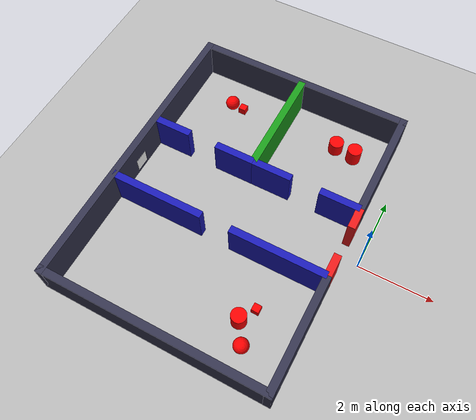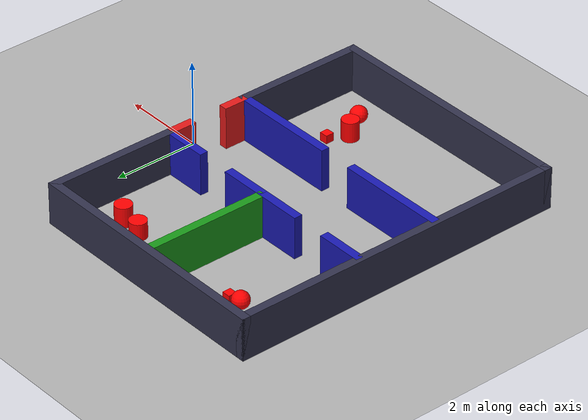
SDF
<?xml version="1.0" ?>
<sdf version="1.9">
  <world name="warehouse">
    <plugin filename="gz-sim-physics-system" name="gz::sim::systems::Physics"/>
    <plugin filename="gz-sim-scene-broadcaster-system" name="gz::sim::systems::SceneBroadcaster"/>
    <plugin filename="gz-sim-user-commands-system" name="gz::sim::systems::UserCommands"/>
    <plugin filename="gz-sim-sensors-system" name="gz::sim::systems::Sensors">
      <render_engine>ogre2</render_engine>
    </plugin>
    <gravity>0 0 -9.8</gravity>
    <magnetic_field>6e-06 2.3e-05 -4.2e-05</magnetic_field>
    <atmosphere type="adiabatic"/>
    <physics type="ode">
      <max_step_size>0.001</max_step_size>
      <real_time_factor>1</real_time_factor>
      <real_time_update_rate>1000</real_time_update_rate>
    </physics>
    <scene>
      <ambient>0.4 0.4 0.4 1</ambient>
      <background>0.7 0.7 0.7 1</background>
      <shadows>true</shadows>
    </scene>
    <light name="sun" type="directional">
      <pose>0 0 10 0 0 0</pose>
      <cast_shadows>true</cast_shadows>
      <diffuse>0.8 0.8 0.8 1</diffuse>
      <direction>-0.5 0.1 -0.9</direction>
    </light>
    <model name="ground_plane">
      <static>true</static>
      <link name="link">
        <collision name="collision">
          <geometry><plane><normal>0 0 1</normal><size>100 100</size></plane></geometry>
        </collision>
        <visual name="visual">
          <geometry><plane><normal>0 0 1</normal><size>100 100</size></plane></geometry>
          <material><ambient>0.7 0.7 0.7 1</ambient><diffuse>0.7 0.7 0.7 1</diffuse></material>
        </visual>
      </link>
    </model>
    <model name="warehouse_walls">
      <static>true</static>
<link name="outer_west">
        <pose>-6.5 0 0.5 0 0 0</pose>
        <collision name="col"><geometry><box><size>0.2 8.2 1</size></box></geometry></collision>
        <visual name="vis">
          <geometry><box><size>0.2 8.2 1</size></box></geometry>
          <material><ambient>0.2 0.2 0.3 1</ambient></material>
        </visual>
        <!-- Faces +X (Inside) -->
        <visual name="qr_code_visual_outer_west">
          <pose>0.105 0 -0.2 0 0 0</pose>
          <geometry><box><size>0.005 0.4 0.4</size></box></geometry>
          <material>
            <ambient>1 1 1 1</ambient><diffuse>1 1 1 1</diffuse>
            <pbr><metal><albedo_map>spotify_qr.png</albedo_map></metal></pbr>
          </material>
        </visual>
      </link>

      <link name="outer_north">
        <pose>-3.5 4 0.5 0 0 0</pose>
        <collision name="col"><geometry><box><size>6.2 0.2 1</size></box></geometry></collision>
        <visual name="vis">
          <geometry><box><size>6.2 0.2 1</size></box></geometry>
          <material><ambient>0.2 0.2 0.3 1</ambient></material>
        </visual>
        <!-- Faces -Y (Inside) -->

      </link>

      <link name="outer_south">
        <pose>-3.5 -4 0.5 0 0 0</pose>
        <collision name="col"><geometry><box><size>6.2 0.2 1</size></box></geometry></collision>
        <visual name="vis">
          <geometry><box><size>6.2 0.2 1</size></box></geometry>
          <material><ambient>0.2 0.2 0.3 1</ambient></material>
        </visual>
        <!-- Faces +Y (Inside) -->

      </link>

      <link name="east_room_b">
        <pose>-0.5 2.5 0.5 0 0 0</pose>
        <collision name="col"><geometry><box><size>0.2 3.2 1</size></box></geometry></collision>
        <visual name="vis">
          <geometry><box><size>0.2 3.2 1</size></box></geometry>
          <material><ambient>0.2 0.2 0.3 1</ambient></material>
        </visual>
        <!-- Faces -X (Inside main room) -->

      </link>

      <link name="east_room_c">
        <pose>-0.5 -2.5 0.5 0 0 0</pose>
        <collision name="col"><geometry><box><size>0.2 3.2 1</size></box></geometry></collision>
        <visual name="vis">
          <geometry><box><size>0.2 3.2 1</size></box></geometry>
          <material><ambient>0.2 0.2 0.3 1</ambient></material>
        </visual>
        <!-- Faces -X (Inside main room) -->

      </link>

      <link name="entrance_top_lip">
        <pose>-0.5 0.7 0.5 0 0 0</pose>
        <collision name="col"><geometry><box><size>0.2 0.6 1</size></box></geometry></collision>
        <visual name="vis">
          <geometry><box><size>0.2 0.6 1</size></box></geometry>
          <material><ambient>0.9 0.1 0.1 1</ambient></material>
        </visual>
        <!-- Faces -X (Inside main room) -->

      </link>

      <!-- Modified Entrance Bottom Lip -->
      <link name="entrance_bottom_lip">
        <pose>-0.5 -0.7 0.5 0 0 0</pose>
        <collision name="col">
          <geometry><box><size>0.2 0.6 1</size></box></geometry>
        </collision>
        <visual name="vis">
          <geometry><box><size>0.2 0.6 1</size></box></geometry>
          <material><ambient>0.9 0.1 0.1 1</ambient></material>
        </visual>

      </link>

      <link name="divider_room_a_b"><pose>-3.5 2.5 0.5 0 0 0</pose><collision name="col"><geometry><box><size>0.2 3 1</size></box></geometry></collision><visual name="vis"><geometry><box><size>0.2 3 1</size></box></geometry><material><ambient>0.1 0.6 0.1 1</ambient></material></visual></link>
      <link name="c_north_seg1"><pose>-5.95 1 0.5 0 0 0</pose><collision name="col"><geometry><box><size>1.1 0.2 1</size></box></geometry></collision><visual name="vis"><geometry><box><size>1.1 0.2 1</size></box></geometry><material><ambient>0.1 0.1 0.7 1</ambient></material></visual></link>
      <link name="c_north_seg2"><pose>-4.05 1 0.5 0 0 0</pose><collision name="col"><geometry><box><size>1.1 0.2 1</size></box></geometry></collision><visual name="vis"><geometry><box><size>1.1 0.2 1</size></box></geometry><material><ambient>0.1 0.1 0.7 1</ambient></material></visual></link>
      <link name="c_north_seg3"><pose>-2.95 1 0.5 0 0 0</pose><collision name="col"><geometry><box><size>1.1 0.2 1</size></box></geometry></collision><visual name="vis"><geometry><box><size>1.1 0.2 1</size></box></geometry><material><ambient>0.1 0.1 0.7 1</ambient></material></visual></link>
      <link name="c_north_seg4"><pose>-1.05 1 0.5 0 0 0</pose><collision name="col"><geometry><box><size>1.1 0.2 1</size></box></geometry></collision><visual name="vis"><geometry><box><size>1.1 0.2 1</size></box></geometry><material><ambient>0.1 0.1 0.7 1</ambient></material></visual></link>
      <link name="c_south_seg1"><pose>-5.2 -1 0.5 0 0 0</pose><collision name="col"><geometry><box><size>2.6 0.2 1</size></box></geometry></collision><visual name="vis"><geometry><box><size>2.6 0.2 1</size></box></geometry><material><ambient>0.1 0.1 0.7 1</ambient></material></visual></link>
      <link name="c_south_seg2"><pose>-1.8 -1 0.5 0 0 0</pose><collision name="col"><geometry><box><size>2.6 0.2 1</size></box></geometry></collision><visual name="vis"><geometry><box><size>2.6 0.2 1</size></box></geometry><material><ambient>0.1 0.1 0.7 1</ambient></material></visual></link>
    </model>

    <model name="sph-1">
      <pose>-5.19814 2.99701 0.2 0 0 0</pose>
      <link name="link">
        <visual name="v">
          <geometry><sphere><radius>0.2</radius></sphere></geometry>
          <material><ambient>1 0 0 1</ambient><diffuse>1 0 0 1</diffuse></material>
        </visual>
        <collision name="c">
          <geometry><sphere><radius>0.2</radius></sphere></geometry>
        </collision>
      </link>
    </model>
    <model name="cube_1">
      <pose>-4.85525 3 0.1 0 0 0</pose>
      <link name="link">
        <visual name="v">
          <geometry><box><size>0.2 0.2 0.2</size></box></geometry>
          <material><ambient>1 0 0 1</ambient><diffuse>1 0 0 1</diffuse></material>
        </visual>
        <collision name="c">
          <geometry><box><size>0.2 0.2 0.2</size></box></geometry>
        </collision>
      </link>
    </model>
    <model name="cyl_1">
      <pose>-1.36669 2.93821 0.24 0 0 0</pose>
      <link name="link">
        <visual name="v">
          <geometry><cylinder><radius>0.2</radius><length>0.48</length></cylinder></geometry>
          <material><ambient>1 0 0 1</ambient><diffuse>1 0 0 1</diffuse></material>
        </visual>
        <collision name="c">
          <geometry><cylinder><radius>0.2</radius><length>0.48</length></cylinder></geometry>
        </collision>
      </link>
    </model>
    <model name="cyl_2">
      <pose>-1.92267 2.99783 0.2 0 0 0</pose>
      <link name="link">
        <visual name="v">
          <geometry><cylinder><radius>0.2</radius><length>0.4</length></cylinder></geometry>
          <material><ambient>1 0 0 1</ambient><diffuse>1 0 0 1</diffuse></material>
        </visual>
        <collision name="c">
          <geometry><cylinder><radius>0.2</radius><length>0.48</length></cylinder></geometry>
        </collision>
      </link>
    </model>
    <model name="cube-2">
      <pose>-1.72069 -2.22478 0.099999 0 0 -0</pose>
      <link name="link">
        <visual name="v">
          <geometry><box><size>0.2 0.2 0.2</size></box></geometry>
          <material><ambient>1 0 0 1</ambient><diffuse>1 0 0 1</diffuse></material>
        </visual>
        <collision name="c">
          <geometry><box><size>0.2 0.2 0.2</size></box></geometry>
        </collision>
      </link>
    </model>
    <model name="sph_2">
      <pose>-1.61931 -3.19709 0.2 0.340186 0.345402 0.067378</pose>
      <link name="link">
        <visual name="v">
          <geometry><sphere><radius>0.2</radius></sphere></geometry>
          <material><ambient>1 0 0 1</ambient><diffuse>1 0 0 1</diffuse></material>
        </visual>
        <collision name="c">
          <geometry><sphere><radius>0.2</radius></sphere></geometry>
        </collision>
      </link>
    </model>
    <model name="cyl-3">
      <pose>-1.96571 -2.66191 0.239999 0 0 0</pose>
      <link name="link">
        <visual name="v">
          <geometry><cylinder><radius>0.2</radius><length>0.48</length></cylinder></geometry>
          <material><ambient>1 0 0 1</ambient><diffuse>1 0 0 1</diffuse></material>
        </visual>
        <collision name="c">
          <geometry><cylinder><radius>0.2</radius><length>0.48</length></cylinder></geometry>
        </collision>
      </link>
    </model>
  </world>
</sdf>
